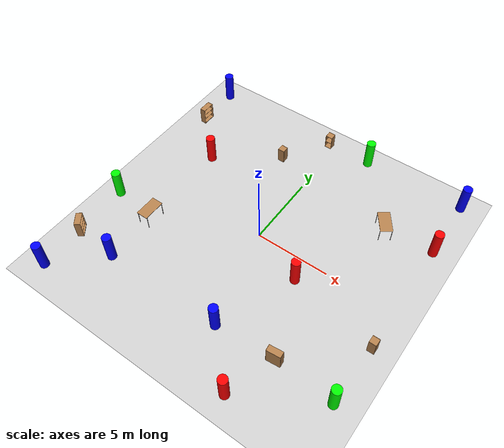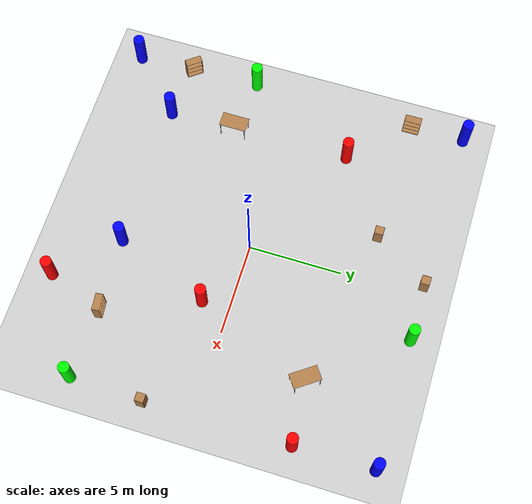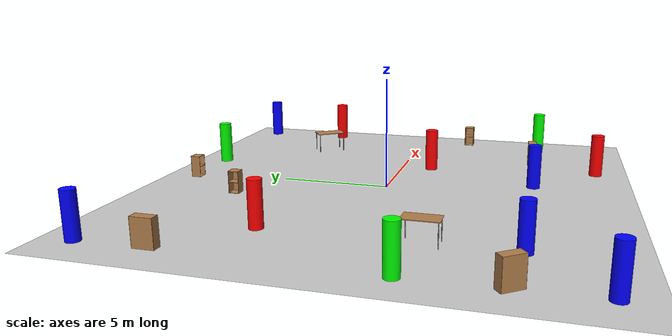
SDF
<sdf version="1.6">
 <world name="default">
  <light name="sun" type="directional">
   <pose>0 0 10 0 -0 0</pose>
   <diffuse>0.8 0.8 0.8 1</diffuse>
   <specular>0.2 0.2 0.2 1</specular>
   <attenuation>
    <range>1000</range>
    <constant>0.9</constant>
    <linear>0.01</linear>
    <quadratic>0.001</quadratic>
   </attenuation>
   <direction>-0.5 0.1 -0.9</direction>
  </light>
  <model name="ground_plane">
   <static>1</static>
   <link name="link">
    <collision name="collision">
     <geometry><plane><normal>0 0 1</normal><size>100 100</size></plane></geometry>
     <surface>
      <contact><collide_bitmask>65535</collide_bitmask></contact>
      <friction><ode><mu>100</mu><mu2>50</mu2></ode></friction>
     </surface>
    </collision>
    <visual name="visual">
     <cast_shadows>0</cast_shadows>
     <geometry><plane><normal>0 0 1</normal><size>100 100</size></plane></geometry>
     <material>
      <script><uri>file://media/materials/scripts/gazebo.material</uri><name>Gazebo/Grey</name></script>
     </material>
    </visual>
   </link>
  </model>
  <gravity>0 0 -9.8</gravity>
  <magnetic_field>6e-06 2.3e-05 -4.2e-05</magnetic_field>
  <atmosphere type="adiabatic"/>
  <physics name="default_physics" default="0" type="ode">
   <max_step_size>0.001</max_step_size>
   <real_time_factor>1</real_time_factor>
   <real_time_update_rate>1000</real_time_update_rate>
  </physics>
  <scene><ambient>0.4 0.4 0.4 1</ambient><background>0.7 0.7 0.7 1</background><shadows>0</shadows></scene>
  <audio><device>default</device></audio>
  <spherical_coordinates>
   <surface_model>EARTH_WGS84</surface_model>
   <latitude_deg>0</latitude_deg>
   <longitude_deg>0</longitude_deg>
   <elevation>0</elevation>
   <heading_deg>0</heading_deg>
  </spherical_coordinates>
  <model name="bookshelf0">
   <static>1</static>
   <link name="link">
    <inertial><mass>1</mass></inertial>
    <collision name="back">
     <pose>0 0.005 0.6 0 -0 0</pose>
     <geometry><box><size>0.9 0.01 1.2</size></box></geometry>
    </collision>
    <visual name="visual1">
     <pose>0 0.005 0.6 0 -0 0</pose>
     <geometry><box><size>0.9 0.01 1.2</size></box></geometry>
     <material>
      <script><uri>file://media/materials/scripts/gazebo.material</uri><name>Gazebo/Wood</name></script>
     </material>
    </visual>
    <collision name="left_side">
     <pose>0.45 -0.195 0.6 0 -0 0</pose>
     <geometry><box><size>0.02 0.4 1.2</size></box></geometry>
    </collision>
    <visual name="visual2">
     <pose>0.45 -0.195 0.6 0 -0 0</pose>
     <geometry><box><size>0.02 0.4 1.2</size></box></geometry>
     <material>
      <script><uri>file://media/materials/scripts/gazebo.material</uri><name>Gazebo/Wood</name></script>
     </material>
    </visual>
    <collision name="right_side">
     <pose>-0.45 -0.195 0.6 0 -0 0</pose>
     <geometry><box><size>0.02 0.4 1.2</size></box></geometry>
    </collision>
    <visual name="visual3">
     <pose>-0.45 -0.195 0.6 0 -0 0</pose>
     <geometry><box><size>0.02 0.4 1.2</size></box></geometry>
     <material>
      <script><uri>file://media/materials/scripts/gazebo.material</uri><name>Gazebo/Wood</name></script>
     </material>
    </visual>
    <collision name="bottom">
     <pose>0 -0.195 0.03 0 -0 0</pose>
     <geometry><box><size>0.88 0.4 0.06</size></box></geometry>
    </collision>
    <visual name="visual4">
     <pose>0 -0.195 0.03 0 -0 0</pose>
     <geometry><box><size>0.88 0.4 0.06</size></box></geometry>
     <material>
      <script><uri>file://media/materials/scripts/gazebo.material</uri><name>Gazebo/Wood</name></script>
     </material>
    </visual>
    <collision name="top">
     <pose>0 -0.195 1.19 0 -0 0</pose>
     <geometry><box><size>0.88 0.4 0.02</size></box></geometry>
    </collision>
    <visual name="visual5">
     <pose>0 -0.195 1.19 0 -0 0</pose>
     <geometry><box><size>0.88 0.4 0.02</size></box></geometry>
     <material>
      <script><uri>file://media/materials/scripts/gazebo.material</uri><name>Gazebo/Wood</name></script>
     </material>
    </visual>
    <collision name="low_shelf">
     <pose>0 -0.195 0.43 0 -0 0</pose>
     <geometry><box><size>0.88 0.4 0.02</size></box></geometry>
    </collision>
    <visual name="visual6">
     <pose>0 -0.195 0.43 0 -0 0</pose>
     <geometry><box><size>0.88 0.4 0.02</size></box></geometry>
     <material>
      <script><uri>file://media/materials/scripts/gazebo.material</uri><name>Gazebo/Wood</name></script>
     </material>
    </visual>
    <collision name="high_shelf">
     <pose>0 -0.195 0.8 0 -0 0</pose>
     <geometry><box><size>0.88 0.4 0.02</size></box></geometry>
    </collision>
    <visual name="visual7">
     <pose>0 -0.195 0.8 0 -0 0</pose>
     <geometry><box><size>0.88 0.4 0.02</size></box></geometry>
     <material>
      <script><uri>file://media/materials/scripts/gazebo.material</uri><name>Gazebo/Wood</name></script>
     </material>
    </visual>
   </link>
   <pose>-9.56962 -6.36024 0 0 -0 2.221</pose>
  </model>
  <model name="bookshelf3">
   <static>1</static>
   <link name="link">
    <inertial><mass>1</mass></inertial>
    <collision name="back">
     <pose>0 0.005 0.6 0 -0 0</pose>
     <geometry><box><size>0.9 0.01 1.2</size></box></geometry>
    </collision>
    <visual name="visual1">
     <pose>0 0.005 0.6 0 -0 0</pose>
     <geometry><box><size>0.9 0.01 1.2</size></box></geometry>
     <material>
      <script><uri>file://media/materials/scripts/gazebo.material</uri><name>Gazebo/Wood</name></script>
     </material>
    </visual>
    <collision name="left_side">
     <pose>0.45 -0.195 0.6 0 -0 0</pose>
     <geometry><box><size>0.02 0.4 1.2</size></box></geometry>
    </collision>
    <visual name="visual2">
     <pose>0.45 -0.195 0.6 0 -0 0</pose>
     <geometry><box><size>0.02 0.4 1.2</size></box></geometry>
     <material>
      <script><uri>file://media/materials/scripts/gazebo.material</uri><name>Gazebo/Wood</name></script>
     </material>
    </visual>
    <collision name="right_side">
     <pose>-0.45 -0.195 0.6 0 -0 0</pose>
     <geometry><box><size>0.02 0.4 1.2</size></box></geometry>
    </collision>
    <visual name="visual3">
     <pose>-0.45 -0.195 0.6 0 -0 0</pose>
     <geometry><box><size>0.02 0.4 1.2</size></box></geometry>
     <material>
      <script><uri>file://media/materials/scripts/gazebo.material</uri><name>Gazebo/Wood</name></script>
     </material>
    </visual>
    <collision name="bottom">
     <pose>0 -0.195 0.03 0 -0 0</pose>
     <geometry><box><size>0.88 0.4 0.06</size></box></geometry>
    </collision>
    <visual name="visual4">
     <pose>0 -0.195 0.03 0 -0 0</pose>
     <geometry><box><size>0.88 0.4 0.06</size></box></geometry>
     <material>
      <script><uri>file://media/materials/scripts/gazebo.material</uri><name>Gazebo/Wood</name></script>
     </material>
    </visual>
    <collision name="top">
     <pose>0 -0.195 1.19 0 -0 0</pose>
     <geometry><box><size>0.88 0.4 0.02</size></box></geometry>
    </collision>
    <visual name="visual5">
     <pose>0 -0.195 1.19 0 -0 0</pose>
     <geometry><box><size>0.88 0.4 0.02</size></box></geometry>
     <material>
      <script><uri>file://media/materials/scripts/gazebo.material</uri><name>Gazebo/Wood</name></script>
     </material>
    </visual>
    <collision name="low_shelf">
     <pose>0 -0.195 0.43 0 -0 0</pose>
     <geometry><box><size>0.88 0.4 0.02</size></box></geometry>
    </collision>
    <visual name="visual6">
     <pose>0 -0.195 0.43 0 -0 0</pose>
     <geometry><box><size>0.88 0.4 0.02</size></box></geometry>
     <material>
      <script><uri>file://media/materials/scripts/gazebo.material</uri><name>Gazebo/Wood</name></script>
     </material>
    </visual>
    <collision name="high_shelf">
     <pose>0 -0.195 0.8 0 -0 0</pose>
     <geometry><box><size>0.88 0.4 0.02</size></box></geometry>
    </collision>
    <visual name="visual7">
     <pose>0 -0.195 0.8 0 -0 0</pose>
     <geometry><box><size>0.88 0.4 0.02</size></box></geometry>
     <material>
      <script><uri>file://media/materials/scripts/gazebo.material</uri><name>Gazebo/Wood</name></script>
     </material>
    </visual>
   </link>
   <pose>5.62712 -6.56114 0 0 0 -3.04017</pose>
  </model>
  <model name="bookshelf4">
   <static>1</static>
   <link name="link">
    <inertial><mass>1</mass></inertial>
    <collision name="back">
     <pose>0 0.005 0.6 0 -0 0</pose>
     <geometry><box><size>0.9 0.01 1.2</size></box></geometry>
    </collision>
    <visual name="visual1">
     <pose>0 0.005 0.6 0 -0 0</pose>
     <geometry><box><size>0.9 0.01 1.2</size></box></geometry>
     <material>
      <script><uri>file://media/materials/scripts/gazebo.material</uri><name>Gazebo/Wood</name></script>
     </material>
    </visual>
    <collision name="left_side">
     <pose>0.45 -0.195 0.6 0 -0 0</pose>
     <geometry><box><size>0.02 0.4 1.2</size></box></geometry>
    </collision>
    <visual name="visual2">
     <pose>0.45 -0.195 0.6 0 -0 0</pose>
     <geometry><box><size>0.02 0.4 1.2</size></box></geometry>
     <material>
      <script><uri>file://media/materials/scripts/gazebo.material</uri><name>Gazebo/Wood</name></script>
     </material>
    </visual>
    <collision name="right_side">
     <pose>-0.45 -0.195 0.6 0 -0 0</pose>
     <geometry><box><size>0.02 0.4 1.2</size></box></geometry>
    </collision>
    <visual name="visual3">
     <pose>-0.45 -0.195 0.6 0 -0 0</pose>
     <geometry><box><size>0.02 0.4 1.2</size></box></geometry>
     <material>
      <script><uri>file://media/materials/scripts/gazebo.material</uri><name>Gazebo/Wood</name></script>
     </material>
    </visual>
    <collision name="bottom">
     <pose>0 -0.195 0.03 0 -0 0</pose>
     <geometry><box><size>0.88 0.4 0.06</size></box></geometry>
    </collision>
    <visual name="visual4">
     <pose>0 -0.195 0.03 0 -0 0</pose>
     <geometry><box><size>0.88 0.4 0.06</size></box></geometry>
     <material>
      <script><uri>file://media/materials/scripts/gazebo.material</uri><name>Gazebo/Wood</name></script>
     </material>
    </visual>
    <collision name="top">
     <pose>0 -0.195 1.19 0 -0 0</pose>
     <geometry><box><size>0.88 0.4 0.02</size></box></geometry>
    </collision>
    <visual name="visual5">
     <pose>0 -0.195 1.19 0 -0 0</pose>
     <geometry><box><size>0.88 0.4 0.02</size></box></geometry>
     <material>
      <script><uri>file://media/materials/scripts/gazebo.material</uri><name>Gazebo/Wood</name></script>
     </material>
    </visual>
    <collision name="low_shelf">
     <pose>0 -0.195 0.43 0 -0 0</pose>
     <geometry><box><size>0.88 0.4 0.02</size></box></geometry>
    </collision>
    <visual name="visual6">
     <pose>0 -0.195 0.43 0 -0 0</pose>
     <geometry><box><size>0.88 0.4 0.02</size></box></geometry>
     <material>
      <script><uri>file://media/materials/scripts/gazebo.material</uri><name>Gazebo/Wood</name></script>
     </material>
    </visual>
    <collision name="high_shelf">
     <pose>0 -0.195 0.8 0 -0 0</pose>
     <geometry><box><size>0.88 0.4 0.02</size></box></geometry>
    </collision>
    <visual name="visual7">
     <pose>0 -0.195 0.8 0 -0 0</pose>
     <geometry><box><size>0.88 0.4 0.02</size></box></geometry>
     <material>
      <script><uri>file://media/materials/scripts/gazebo.material</uri><name>Gazebo/Wood</name></script>
     </material>
    </visual>
   </link>
   <pose>-9.58851 6.47829 0 0 -0 1.5708</pose>
  </model>
  <model name="cabinet0">
   <static>1</static>
   <link name="cabinet_bottom_plate">
    <inertial>
     <pose>0 0 -1 0 -0 0</pose>
     <inertia><ixx>2.05</ixx><ixy>0</ixy><ixz>0</ixz><iyy>2.05</iyy><iyz>0</iyz><izz>2.05</izz></inertia>
     <mass>25</mass>
    </inertial>
    <collision name="cabinet_bottom_plate_geom">
     <pose>0 0 0.01 0 -0 0</pose>
     <geometry><box><size>0.45 0.45 0.02</size></box></geometry>
    </collision>
    <visual name="cabinet_bottom_plate_geom_visual">
     <pose>0 0 0.01 0 -0 0</pose>
     <geometry><box><size>0.45 0.45 0.02</size></box></geometry>
     <material>
      <script><uri>file://media/materials/scripts/gazebo.material</uri><name>Gazebo/Wood</name></script>
     </material>
    </visual>
    <collision name="cabinet_bottom_plate_geom_cabinet_back_plate">
     <pose>0.235 0 0.51 0 -0 0</pose>
     <geometry><box><size>0.02 0.45 1.02</size></box></geometry>
    </collision>
    <visual name="cabinet_bottom_plate_geom_cabinet_back_plate_visual">
     <pose>0.235 0 0.51 0 -0 0</pose>
     <geometry><box><size>0.02 0.45 1.02</size></box></geometry>
     <material>
      <script><uri>file://media/materials/scripts/gazebo.material</uri><name>Gazebo/Wood</name></script>
     </material>
    </visual>
    <collision name="cabinet_bottom_plate_geom_cabinet_left_plate">
     <pose>0 0.235 0.51 0 -0 0</pose>
     <geometry><box><size>0.45 0.02 1.02</size></box></geometry>
    </collision>
    <visual name="cabinet_bottom_plate_geom_cabinet_left_plate_visual">
     <pose>0 0.235 0.51 0 -0 0</pose>
     <geometry><box><size>0.45 0.02 1.02</size></box></geometry>
     <material>
      <script><uri>file://media/materials/scripts/gazebo.material</uri><name>Gazebo/Wood</name></script>
     </material>
    </visual>
    <collision name="cabinet_bottom_plate_geom_cabinet_middle_plate">
     <pose>0 0 0.51 0 -0 0</pose>
     <geometry><box><size>0.45 0.45 0.02</size></box></geometry>
    </collision>
    <visual name="cabinet_bottom_plate_geom_cabinet_middle_plate_visual">
     <pose>0 0 0.51 0 -0 0</pose>
     <geometry><box><size>0.45 0.45 0.02</size></box></geometry>
     <material>
      <script><uri>file://media/materials/scripts/gazebo.material</uri><name>Gazebo/Wood</name></script>
     </material>
    </visual>
    <collision name="cabinet_bottom_plate_geom_cabinet_right_plate">
     <pose>0 -0.235 0.51 0 -0 0</pose>
     <geometry><box><size>0.45 0.02 1.02</size></box></geometry>
    </collision>
    <visual name="cabinet_bottom_plate_geom_cabinet_right_plate_visual">
     <pose>0 -0.235 0.51 0 -0 0</pose>
     <geometry><box><size>0.45 0.02 1.02</size></box></geometry>
     <material>
      <script><uri>file://media/materials/scripts/gazebo.material</uri><name>Gazebo/Wood</name></script>
     </material>
    </visual>
    <collision name="cabinet_bottom_plate_geom_cabinet_top_plate">
     <pose>0 0 1.01 0 -0 0</pose>
     <geometry><box><size>0.45 0.45 0.02</size></box></geometry>
    </collision>
    <visual name="cabinet_bottom_plate_geom_cabinet_top_plate_visual">
     <pose>0 0 1.01 0 -0 0</pose>
     <geometry><box><size>0.45 0.45 0.02</size></box></geometry>
     <material>
      <script><uri>file://media/materials/scripts/gazebo.material</uri><name>Gazebo/Wood</name></script>
     </material>
    </visual>
   </link>
   <pose>-2.55094 6.37517 0 0 -0 0</pose>
  </model>
  <model name="cabinet4">
   <static>1</static>
   <link name="cabinet_bottom_plate">
    <inertial>
     <pose>0 0 -1 0 -0 0</pose>
     <inertia><ixx>2.05</ixx><ixy>0</ixy><ixz>0</ixz><iyy>2.05</iyy><iyz>0</iyz><izz>2.05</izz></inertia>
     <mass>25</mass>
    </inertial>
    <collision name="cabinet_bottom_plate_geom">
     <pose>0 0 0.01 0 -0 0</pose>
     <geometry><box><size>0.45 0.45 0.02</size></box></geometry>
    </collision>
    <visual name="cabinet_bottom_plate_geom_visual">
     <pose>0 0 0.01 0 -0 0</pose>
     <geometry><box><size>0.45 0.45 0.02</size></box></geometry>
     <material>
      <script><uri>file://media/materials/scripts/gazebo.material</uri><name>Gazebo/Wood</name></script>
     </material>
    </visual>
    <collision name="cabinet_bottom_plate_geom_cabinet_back_plate">
     <pose>0.235 0 0.51 0 -0 0</pose>
     <geometry><box><size>0.02 0.45 1.02</size></box></geometry>
    </collision>
    <visual name="cabinet_bottom_plate_geom_cabinet_back_plate_visual">
     <pose>0.235 0 0.51 0 -0 0</pose>
     <geometry><box><size>0.02 0.45 1.02</size></box></geometry>
     <material>
      <script><uri>file://media/materials/scripts/gazebo.material</uri><name>Gazebo/Wood</name></script>
     </material>
    </visual>
    <collision name="cabinet_bottom_plate_geom_cabinet_left_plate">
     <pose>0 0.235 0.51 0 -0 0</pose>
     <geometry><box><size>0.45 0.02 1.02</size></box></geometry>
    </collision>
    <visual name="cabinet_bottom_plate_geom_cabinet_left_plate_visual">
     <pose>0 0.235 0.51 0 -0 0</pose>
     <geometry><box><size>0.45 0.02 1.02</size></box></geometry>
     <material>
      <script><uri>file://media/materials/scripts/gazebo.material</uri><name>Gazebo/Wood</name></script>
     </material>
    </visual>
    <collision name="cabinet_bottom_plate_geom_cabinet_middle_plate">
     <pose>0 0 0.51 0 -0 0</pose>
     <geometry><box><size>0.45 0.45 0.02</size></box></geometry>
    </collision>
    <visual name="cabinet_bottom_plate_geom_cabinet_middle_plate_visual">
     <pose>0 0 0.51 0 -0 0</pose>
     <geometry><box><size>0.45 0.45 0.02</size></box></geometry>
     <material>
      <script><uri>file://media/materials/scripts/gazebo.material</uri><name>Gazebo/Wood</name></script>
     </material>
    </visual>
    <collision name="cabinet_bottom_plate_geom_cabinet_right_plate">
     <pose>0 -0.235 0.51 0 -0 0</pose>
     <geometry><box><size>0.45 0.02 1.02</size></box></geometry>
    </collision>
    <visual name="cabinet_bottom_plate_geom_cabinet_right_plate_visual">
     <pose>0 -0.235 0.51 0 -0 0</pose>
     <geometry><box><size>0.45 0.02 1.02</size></box></geometry>
     <material>
      <script><uri>file://media/materials/scripts/gazebo.material</uri><name>Gazebo/Wood</name></script>
     </material>
    </visual>
    <collision name="cabinet_bottom_plate_geom_cabinet_top_plate">
     <pose>0 0 1.01 0 -0 0</pose>
     <geometry><box><size>0.45 0.45 0.02</size></box></geometry>
    </collision>
    <visual name="cabinet_bottom_plate_geom_cabinet_top_plate_visual">
     <pose>0 0 1.01 0 -0 0</pose>
     <geometry><box><size>0.45 0.45 0.02</size></box></geometry>
     <material>
      <script><uri>file://media/materials/scripts/gazebo.material</uri><name>Gazebo/Wood</name></script>
     </material>
    </visual>
   </link>
   <pose>-0.543801 9.37768 0 0 -0 1.5708</pose>
  </model>
  <model name="table1">
   <static>1</static>
   <link name="link">
    <collision name="surface">
     <pose>0 0 1 0 -0 0</pose>
     <geometry><box><size>1.5 0.8 0.03</size></box></geometry>
     <surface><friction><ode><mu>0.6</mu><mu2>0.6</mu2></ode></friction></surface>
    </collision>
    <visual name="visual1">
     <pose>0 0 1 0 -0 0</pose>
     <geometry><box><size>1.5 0.8 0.03</size></box></geometry>
     <material>
      <script><uri>file://media/materials/scripts/gazebo.material</uri><name>Gazebo/Wood</name></script>
     </material>
    </visual>
    <collision name="front_left_leg">
     <pose>0.68 0.38 0.5 0 -0 0</pose>
     <geometry><cylinder><radius>0.02</radius><length>1</length></cylinder></geometry>
    </collision>
    <visual name="front_left_leg">
     <pose>0.68 0.38 0.5 0 -0 0</pose>
     <geometry><cylinder><radius>0.02</radius><length>1</length></cylinder></geometry>
     <material>
      <script><uri>file://media/materials/scripts/gazebo.material</uri><name>Gazebo/Grey</name></script>
     </material>
    </visual>
    <collision name="front_right_leg">
     <pose>0.68 -0.38 0.5 0 -0 0</pose>
     <geometry><cylinder><radius>0.02</radius><length>1</length></cylinder></geometry>
    </collision>
    <visual name="front_right_leg">
     <pose>0.68 -0.38 0.5 0 -0 0</pose>
     <geometry><cylinder><radius>0.02</radius><length>1</length></cylinder></geometry>
     <material>
      <script><uri>file://media/materials/scripts/gazebo.material</uri><name>Gazebo/Grey</name></script>
     </material>
    </visual>
    <collision name="back_right_leg">
     <pose>-0.68 -0.38 0.5 0 -0 0</pose>
     <geometry><cylinder><radius>0.02</radius><length>1</length></cylinder></geometry>
    </collision>
    <visual name="back_right_leg">
     <pose>-0.68 -0.38 0.5 0 -0 0</pose>
     <geometry><cylinder><radius>0.02</radius><length>1</length></cylinder></geometry>
     <material>
      <script><uri>file://media/materials/scripts/gazebo.material</uri><name>Gazebo/Grey</name></script>
     </material>
    </visual>
    <collision name="back_left_leg">
     <pose>-0.68 0.38 0.5 0 -0 0</pose>
     <geometry><cylinder><radius>0.02</radius><length>1</length></cylinder></geometry>
    </collision>
    <visual name="back_left_leg">
     <pose>-0.68 0.38 0.5 0 -0 0</pose>
     <geometry><cylinder><radius>0.02</radius><length>1</length></cylinder></geometry>
     <material>
      <script><uri>file://media/materials/scripts/gazebo.material</uri><name>Gazebo/Grey</name></script>
     </material>
    </visual>
   </link>
   <pose>-6.48004 -2.9038 0 0 0 -1.5708</pose>
  </model>
  <model name="table2">
   <static>1</static>
   <link name="link">
    <collision name="surface">
     <pose>0 0 1 0 -0 0</pose>
     <geometry><box><size>1.5 0.8 0.03</size></box></geometry>
     <surface><friction><ode><mu>0.6</mu><mu2>0.6</mu2></ode></friction></surface>
    </collision>
    <visual name="visual1">
     <pose>0 0 1 0 -0 0</pose>
     <geometry><box><size>1.5 0.8 0.03</size></box></geometry>
     <material>
      <script><uri>file://media/materials/scripts/gazebo.material</uri><name>Gazebo/Wood</name></script>
     </material>
    </visual>
    <collision name="front_left_leg">
     <pose>0.68 0.38 0.5 0 -0 0</pose>
     <geometry><cylinder><radius>0.02</radius><length>1</length></cylinder></geometry>
    </collision>
    <visual name="front_left_leg">
     <pose>0.68 0.38 0.5 0 -0 0</pose>
     <geometry><cylinder><radius>0.02</radius><length>1</length></cylinder></geometry>
     <material>
      <script><uri>file://media/materials/scripts/gazebo.material</uri><name>Gazebo/Grey</name></script>
     </material>
    </visual>
    <collision name="front_right_leg">
     <pose>0.68 -0.38 0.5 0 -0 0</pose>
     <geometry><cylinder><radius>0.02</radius><length>1</length></cylinder></geometry>
    </collision>
    <visual name="front_right_leg">
     <pose>0.68 -0.38 0.5 0 -0 0</pose>
     <geometry><cylinder><radius>0.02</radius><length>1</length></cylinder></geometry>
     <material>
      <script><uri>file://media/materials/scripts/gazebo.material</uri><name>Gazebo/Grey</name></script>
     </material>
    </visual>
    <collision name="back_right_leg">
     <pose>-0.68 -0.38 0.5 0 -0 0</pose>
     <geometry><cylinder><radius>0.02</radius><length>1</length></cylinder></geometry>
    </collision>
    <visual name="back_right_leg">
     <pose>-0.68 -0.38 0.5 0 -0 0</pose>
     <geometry><cylinder><radius>0.02</radius><length>1</length></cylinder></geometry>
     <material>
      <script><uri>file://media/materials/scripts/gazebo.material</uri><name>Gazebo/Grey</name></script>
     </material>
    </visual>
    <collision name="back_left_leg">
     <pose>-0.68 0.38 0.5 0 -0 0</pose>
     <geometry><cylinder><radius>0.02</radius><length>1</length></cylinder></geometry>
    </collision>
    <visual name="back_left_leg">
     <pose>-0.68 0.38 0.5 0 -0 0</pose>
     <geometry><cylinder><radius>0.02</radius><length>1</length></cylinder></geometry>
     <material>
      <script><uri>file://media/materials/scripts/gazebo.material</uri><name>Gazebo/Grey</name></script>
     </material>
    </visual>
   </link>
   <pose>6.20609 4.85184 0 0 -0 2.19088</pose>
  </model>
  <model name="red0">
   <link name="link">
    <pose>-0.202221 0.506091 0 0 -0 0</pose>
    <inertial>
     <mass>1</mass>
     <inertia><ixx>0.145833</ixx><ixy>0</ixy><ixz>0</ixz><iyy>0.145833</iyy><iyz>0</iyz><izz>0.125</izz></inertia>
    </inertial>
    <visual name="visual">
     <geometry><cylinder><radius>0.3</radius><length>2</length></cylinder></geometry>
     <material>
      <script><name>Gazebo/Grey</name><uri>file://media/materials/scripts/gazebo.material</uri></script>
      <ambient>1 0 0 1</ambient>
      <diffuse>0.7 0.7 0.7 1</diffuse>
      <specular>0.01 0.01 0.01 1</specular>
      <emissive>0 0 0 1</emissive>
      <shader type="vertex"><normal_map>__default__</normal_map></shader>
     </material>
    </visual>
    <collision name="collision">
     <geometry><cylinder><radius>0.3</radius><length>2</length></cylinder></geometry>
     <surface>
      <friction>
       <ode><mu>1</mu><mu2>1</mu2><fdir1>0 0 0</fdir1><slip1>0</slip1><slip2>0</slip2></ode>
       <torsional>
        <coefficient>1</coefficient>
        <patch_radius>0</patch_radius>
        <surface_radius>0</surface_radius>
        <use_patch_radius>1</use_patch_radius>
        <ode><slip>0</slip></ode>
       </torsional>
      </friction>
      <bounce><restitution_coefficient>0</restitution_coefficient><threshold>1e+06</threshold></bounce>
      <contact>
       <collide_without_contact>0</collide_without_contact>
       <collide_without_contact_bitmask>1</collide_without_contact_bitmask>
       <collide_bitmask>1</collide_bitmask>
       <ode>
        <soft_cfm>0</soft_cfm>
        <soft_erp>0.2</soft_erp>
        <kp>1e+13</kp>
        <kd>1</kd>
        <max_vel>0.01</max_vel>
        <min_depth>0</min_depth>
       </ode>
       <bullet>
        <split_impulse>1</split_impulse>
        <split_impulse_penetration_threshold>-0.01</split_impulse_penetration_threshold>
        <soft_cfm>0</soft_cfm>
        <soft_erp>0.2</soft_erp>
        <kp>1e+13</kp>
        <kd>1</kd>
       </bullet>
      </contact>
     </surface>
    </collision>
   </link>
   <static>0</static>
   <pose>-6.38999 3.00546 0.999998 0 -0 6.7e-05</pose>
  </model>
  <model name="red3">
   <link name="link">
    <pose>-0.202221 0.506091 0 0 -0 0</pose>
    <inertial>
     <mass>1</mass>
     <inertia><ixx>0.145833</ixx><ixy>0</ixy><ixz>0</ixz><iyy>0.145833</iyy><iyz>0</iyz><izz>0.125</izz></inertia>
    </inertial>
    <visual name="visual">
     <geometry><cylinder><radius>0.3</radius><length>2</length></cylinder></geometry>
     <material>
      <script><name>Gazebo/Grey</name><uri>file://media/materials/scripts/gazebo.material</uri></script>
      <ambient>1 0 0 1</ambient>
      <diffuse>0.7 0.7 0.7 1</diffuse>
      <specular>0.01 0.01 0.01 1</specular>
      <emissive>0 0 0 1</emissive>
      <shader type="vertex"><normal_map>__default__</normal_map></shader>
     </material>
    </visual>
    <collision name="collision">
     <geometry><cylinder><radius>0.3</radius><length>2</length></cylinder></geometry>
     <surface>
      <friction>
       <ode><mu>1</mu><mu2>1</mu2><fdir1>0 0 0</fdir1><slip1>0</slip1><slip2>0</slip2></ode>
       <torsional>
        <coefficient>1</coefficient>
        <patch_radius>0</patch_radius>
        <surface_radius>0</surface_radius>
        <use_patch_radius>1</use_patch_radius>
        <ode><slip>0</slip></ode>
       </torsional>
      </friction>
      <bounce><restitution_coefficient>0</restitution_coefficient><threshold>1e+06</threshold></bounce>
      <contact>
       <collide_without_contact>0</collide_without_contact>
       <collide_without_contact_bitmask>1</collide_without_contact_bitmask>
       <collide_bitmask>1</collide_bitmask>
       <ode>
        <soft_cfm>0</soft_cfm>
        <soft_erp>0.2</soft_erp>
        <kp>1e+13</kp>
        <kd>1</kd>
        <max_vel>0.01</max_vel>
        <min_depth>0</min_depth>
       </ode>
       <bullet>
        <split_impulse>1</split_impulse>
        <split_impulse_penetration_threshold>-0.01</split_impulse_penetration_threshold>
        <soft_cfm>0</soft_cfm>
        <soft_erp>0.2</soft_erp>
        <kp>1e+13</kp>
        <kd>1</kd>
       </bullet>
      </contact>
     </surface>
    </collision>
   </link>
   <static>0</static>
   <pose>4.75127 -9.96152 0.999991 0 -0 2.3e-05</pose>
  </model>
  <model name="red5">
   <link name="link">
    <pose>-0.202221 0.506091 0 0 -0 0</pose>
    <inertial>
     <mass>1</mass>
     <inertia><ixx>0.145833</ixx><ixy>0</ixy><ixz>0</ixz><iyy>0.145833</iyy><iyz>0</iyz><izz>0.125</izz></inertia>
    </inertial>
    <visual name="visual">
     <geometry><cylinder><radius>0.3</radius><length>2</length></cylinder></geometry>
     <material>
      <script><name>Gazebo/Grey</name><uri>file://media/materials/scripts/gazebo.material</uri></script>
      <ambient>1 0 0 1</ambient>
      <diffuse>0.7 0.7 0.7 1</diffuse>
      <specular>0.01 0.01 0.01 1</specular>
      <emissive>0 0 0 1</emissive>
      <shader type="vertex"><normal_map>__default__</normal_map></shader>
     </material>
    </visual>
    <collision name="collision">
     <geometry><cylinder><radius>0.3</radius><length>2</length></cylinder></geometry>
     <surface>
      <friction>
       <ode><mu>1</mu><mu2>1</mu2><fdir1>0 0 0</fdir1><slip1>0</slip1><slip2>0</slip2></ode>
       <torsional>
        <coefficient>1</coefficient>
        <patch_radius>0</patch_radius>
        <surface_radius>0</surface_radius>
        <use_patch_radius>1</use_patch_radius>
        <ode><slip>0</slip></ode>
       </torsional>
      </friction>
      <bounce><restitution_coefficient>0</restitution_coefficient><threshold>1e+06</threshold></bounce>
      <contact>
       <collide_without_contact>0</collide_without_contact>
       <collide_without_contact_bitmask>1</collide_without_contact_bitmask>
       <collide_bitmask>1</collide_bitmask>
       <ode>
        <soft_cfm>0</soft_cfm>
        <soft_erp>0.2</soft_erp>
        <kp>1e+13</kp>
        <kd>1</kd>
        <max_vel>0.01</max_vel>
        <min_depth>0</min_depth>
       </ode>
       <bullet>
        <split_impulse>1</split_impulse>
        <split_impulse_penetration_threshold>-0.01</split_impulse_penetration_threshold>
        <soft_cfm>0</soft_cfm>
        <soft_erp>0.2</soft_erp>
        <kp>1e+13</kp>
        <kd>1</kd>
       </bullet>
      </contact>
     </surface>
    </collision>
   </link>
   <static>0</static>
   <pose>9.73011 4.64891 0.999999 0 -0 3e-05</pose>
  </model>
  <model name="green4">
   <link name="link">
    <inertial>
     <mass>1</mass>
     <inertia><ixx>0.145833</ixx><ixy>0</ixy><ixz>0</ixz><iyy>0.145833</iyy><iyz>0</iyz><izz>0.125</izz></inertia>
    </inertial>
    <visual name="visual">
     <geometry><cylinder><radius>0.3</radius><length>2</length></cylinder></geometry>
     <material>
      <script><name>Gazebo/Grey</name><uri>file://media/materials/scripts/gazebo.material</uri></script>
      <ambient>0 1 0 1</ambient>
      <diffuse>0.7 0.7 0.7 1</diffuse>
      <specular>0.01 0.01 0.01 1</specular>
      <emissive>0 0 0 1</emissive>
      <shader type="vertex"><normal_map>__default__</normal_map></shader>
     </material>
    </visual>
    <collision name="collision">
     <geometry><cylinder><radius>0.3</radius><length>2</length></cylinder></geometry>
     <surface>
      <friction>
       <ode><mu>1</mu><mu2>1</mu2><fdir1>0 0 0</fdir1><slip1>0</slip1><slip2>0</slip2></ode>
       <torsional>
        <coefficient>1</coefficient>
        <patch_radius>0</patch_radius>
        <surface_radius>0</surface_radius>
        <use_patch_radius>1</use_patch_radius>
        <ode><slip>0</slip></ode>
       </torsional>
      </friction>
      <bounce><restitution_coefficient>0</restitution_coefficient><threshold>1e+06</threshold></bounce>
      <contact>
       <collide_without_contact>0</collide_without_contact>
       <collide_without_contact_bitmask>1</collide_without_contact_bitmask>
       <collide_bitmask>1</collide_bitmask>
       <ode>
        <soft_cfm>0</soft_cfm>
        <soft_erp>0.2</soft_erp>
        <kp>1e+13</kp>
        <kd>1</kd>
        <max_vel>0.01</max_vel>
        <min_depth>0</min_depth>
       </ode>
       <bullet>
        <split_impulse>1</split_impulse>
        <split_impulse_penetration_threshold>-0.01</split_impulse_penetration_threshold>
        <soft_cfm>0</soft_cfm>
        <soft_erp>0.2</soft_erp>
        <kp>1e+13</kp>
        <kd>1</kd>
       </bullet>
      </contact>
     </surface>
    </collision>
   </link>
   <static>0</static>
   <pose>-9.56899 -2.54475 0.999991 0 -0 7.2e-05</pose>
  </model>
  <model name="green6">
   <link name="link">
    <inertial>
     <mass>1</mass>
     <inertia><ixx>0.145833</ixx><ixy>0</ixy><ixz>0</ixz><iyy>0.145833</iyy><iyz>0</iyz><izz>0.125</izz></inertia>
    </inertial>
    <visual name="visual">
     <geometry><cylinder><radius>0.3</radius><length>2</length></cylinder></geometry>
     <material>
      <script><name>Gazebo/Grey</name><uri>file://media/materials/scripts/gazebo.material</uri></script>
      <ambient>0 1 0 1</ambient>
      <diffuse>0.7 0.7 0.7 1</diffuse>
      <specular>0.01 0.01 0.01 1</specular>
      <emissive>0 0 0 1</emissive>
      <shader type="vertex"><normal_map>__default__</normal_map></shader>
     </material>
    </visual>
    <collision name="collision">
     <geometry><cylinder><radius>0.3</radius><length>2</length></cylinder></geometry>
     <surface>
      <friction>
       <ode><mu>1</mu><mu2>1</mu2><fdir1>0 0 0</fdir1><slip1>0</slip1><slip2>0</slip2></ode>
       <torsional>
        <coefficient>1</coefficient>
        <patch_radius>0</patch_radius>
        <surface_radius>0</surface_radius>
        <use_patch_radius>1</use_patch_radius>
        <ode><slip>0</slip></ode>
       </torsional>
      </friction>
      <bounce><restitution_coefficient>0</restitution_coefficient><threshold>1e+06</threshold></bounce>
      <contact>
       <collide_without_contact>0</collide_without_contact>
       <collide_without_contact_bitmask>1</collide_without_contact_bitmask>
       <collide_bitmask>1</collide_bitmask>
       <ode>
        <soft_cfm>0</soft_cfm>
        <soft_erp>0.2</soft_erp>
        <kp>1e+13</kp>
        <kd>1</kd>
        <max_vel>0.01</max_vel>
        <min_depth>0</min_depth>
       </ode>
       <bullet>
        <split_impulse>1</split_impulse>
        <split_impulse_penetration_threshold>-0.01</split_impulse_penetration_threshold>
        <soft_cfm>0</soft_cfm>
        <soft_erp>0.2</soft_erp>
        <kp>1e+13</kp>
        <kd>1</kd>
       </bullet>
      </contact>
     </surface>
    </collision>
   </link>
   <static>0</static>
   <pose>2.53968 9.4254 0.999993 0 -0 1.57248</pose>
  </model>
  <model name="blue0">
   <link name="link">
    <inertial>
     <mass>1</mass>
     <inertia><ixx>0.145833</ixx><ixy>0</ixy><ixz>0</ixz><iyy>0.145833</iyy><iyz>0</iyz><izz>0.125</izz></inertia>
    </inertial>
    <visual name="visual">
     <geometry><cylinder><radius>0.3</radius><length>2</length></cylinder></geometry>
     <material>
      <script><name>Gazebo/Grey</name><uri>file://media/materials/scripts/gazebo.material</uri></script>
      <ambient>0 0 1 1</ambient>
      <diffuse>0.7 0.7 0.7 1</diffuse>
      <specular>0.01 0.01 0.01 1</specular>
      <emissive>0 0 0 1</emissive>
      <shader type="vertex"><normal_map>__default__</normal_map></shader>
     </material>
    </visual>
    <collision name="collision">
     <geometry><cylinder><radius>0.2</radius><length>2</length></cylinder></geometry>
     <surface>
      <friction>
       <ode><mu>1</mu><mu2>1</mu2><fdir1>0 0 0</fdir1><slip1>0</slip1><slip2>0</slip2></ode>
       <torsional>
        <coefficient>1</coefficient>
        <patch_radius>0</patch_radius>
        <surface_radius>0</surface_radius>
        <use_patch_radius>1</use_patch_radius>
        <ode><slip>0</slip></ode>
       </torsional>
      </friction>
      <bounce><restitution_coefficient>0</restitution_coefficient><threshold>1e+06</threshold></bounce>
      <contact>
       <collide_without_contact>0</collide_without_contact>
       <collide_without_contact_bitmask>1</collide_without_contact_bitmask>
       <collide_bitmask>1</collide_bitmask>
       <ode>
        <soft_cfm>0</soft_cfm>
        <soft_erp>0.2</soft_erp>
        <kp>1e+13</kp>
        <kd>1</kd>
        <max_vel>0.01</max_vel>
        <min_depth>0</min_depth>
       </ode>
       <bullet>
        <split_impulse>1</split_impulse>
        <split_impulse_penetration_threshold>-0.01</split_impulse_penetration_threshold>
        <soft_cfm>0</soft_cfm>
        <soft_erp>0.2</soft_erp>
        <kp>1e+13</kp>
        <kd>1</kd>
       </bullet>
      </contact>
     </surface>
    </collision>
   </link>
   <static>0</static>
   <pose>1.6568 -6.57214 1 0 0 -0.008091</pose>
  </model>
  <model name="blue1">
   <link name="link">
    <inertial>
     <mass>1</mass>
     <inertia><ixx>0.145833</ixx><ixy>0</ixy><ixz>0</ixz><iyy>0.145833</iyy><iyz>0</iyz><izz>0.125</izz></inertia>
    </inertial>
    <visual name="visual">
     <geometry><cylinder><radius>0.3</radius><length>2</length></cylinder></geometry>
     <material>
      <script><name>Gazebo/Grey</name><uri>file://media/materials/scripts/gazebo.material</uri></script>
      <ambient>0 0 1 1</ambient>
      <diffuse>0.7 0.7 0.7 1</diffuse>
      <specular>0.01 0.01 0.01 1</specular>
      <emissive>0 0 0 1</emissive>
      <shader type="vertex"><normal_map>__default__</normal_map></shader>
     </material>
    </visual>
    <collision name="collision">
     <geometry><cylinder><radius>0.2</radius><length>2</length></cylinder></geometry>
     <surface>
      <friction>
       <ode><mu>1</mu><mu2>1</mu2><fdir1>0 0 0</fdir1><slip1>0</slip1><slip2>0</slip2></ode>
       <torsional>
        <coefficient>1</coefficient>
        <patch_radius>0</patch_radius>
        <surface_radius>0</surface_radius>
        <use_patch_radius>1</use_patch_radius>
        <ode><slip>0</slip></ode>
       </torsional>
      </friction>
      <bounce><restitution_coefficient>0</restitution_coefficient><threshold>1e+06</threshold></bounce>
      <contact>
       <collide_without_contact>0</collide_without_contact>
       <collide_without_contact_bitmask>1</collide_without_contact_bitmask>
       <collide_bitmask>1</collide_bitmask>
       <ode>
        <soft_cfm>0</soft_cfm>
        <soft_erp>0.2</soft_erp>
        <kp>1e+13</kp>
        <kd>1</kd>
        <max_vel>0.01</max_vel>
        <min_depth>0</min_depth>
       </ode>
       <bullet>
        <split_impulse>1</split_impulse>
        <split_impulse_penetration_threshold>-0.01</split_impulse_penetration_threshold>
        <soft_cfm>0</soft_cfm>
        <soft_erp>0.2</soft_erp>
        <kp>1e+13</kp>
        <kd>1</kd>
       </bullet>
      </contact>
     </surface>
    </collision>
   </link>
   <static>0</static>
   <pose>9.46064 9.42756 0.99999 -0 -0 -0.00684</pose>
  </model>
  <model name="blue3">
   <link name="link">
    <inertial>
     <mass>1</mass>
     <inertia><ixx>0.145833</ixx><ixy>0</ixy><ixz>0</ixz><iyy>0.145833</iyy><iyz>0</iyz><izz>0.125</izz></inertia>
    </inertial>
    <visual name="visual">
     <geometry><cylinder><radius>0.3</radius><length>2</length></cylinder></geometry>
     <material>
      <script><name>Gazebo/Grey</name><uri>file://media/materials/scripts/gazebo.material</uri></script>
      <ambient>0 0 1 1</ambient>
      <diffuse>0.7 0.7 0.7 1</diffuse>
      <specular>0.01 0.01 0.01 1</specular>
      <emissive>0 0 0 1</emissive>
      <shader type="vertex"><normal_map>__default__</normal_map></shader>
     </material>
    </visual>
    <collision name="collision">
     <geometry><cylinder><radius>0.2</radius><length>2</length></cylinder></geometry>
     <surface>
      <friction>
       <ode><mu>1</mu><mu2>1</mu2><fdir1>0 0 0</fdir1><slip1>0</slip1><slip2>0</slip2></ode>
       <torsional>
        <coefficient>1</coefficient>
        <patch_radius>0</patch_radius>
        <surface_radius>0</surface_radius>
        <use_patch_radius>1</use_patch_radius>
        <ode><slip>0</slip></ode>
       </torsional>
      </friction>
      <bounce><restitution_coefficient>0</restitution_coefficient><threshold>1e+06</threshold></bounce>
      <contact>
       <collide_without_contact>0</collide_without_contact>
       <collide_without_contact_bitmask>1</collide_without_contact_bitmask>
       <collide_bitmask>1</collide_bitmask>
       <ode>
        <soft_cfm>0</soft_cfm>
        <soft_erp>0.2</soft_erp>
        <kp>1e+13</kp>
        <kd>1</kd>
        <max_vel>0.01</max_vel>
        <min_depth>0</min_depth>
       </ode>
       <bullet>
        <split_impulse>1</split_impulse>
        <split_impulse_penetration_threshold>-0.01</split_impulse_penetration_threshold>
        <soft_cfm>0</soft_cfm>
        <soft_erp>0.2</soft_erp>
        <kp>1e+13</kp>
        <kd>1</kd>
       </bullet>
      </contact>
     </surface>
    </collision>
   </link>
   <static>0</static>
   <pose>-9.36172 -9.40328 0.99999 0 -0 -0.006094</pose>
  </model>
  <model name="blue4">
   <link name="link">
    <inertial>
     <mass>1</mass>
     <inertia><ixx>0.145833</ixx><ixy>0</ixy><ixz>0</ixz><iyy>0.145833</iyy><iyz>0</iyz><izz>0.125</izz></inertia>
    </inertial>
    <visual name="visual">
     <geometry><cylinder><radius>0.3</radius><length>2</length></cylinder></geometry>
     <material>
      <script><name>Gazebo/Grey</name><uri>file://media/materials/scripts/gazebo.material</uri></script>
      <ambient>0 0 1 1</ambient>
      <diffuse>0.7 0.7 0.7 1</diffuse>
      <specular>0.01 0.01 0.01 1</specular>
      <emissive>0 0 0 1</emissive>
      <shader type="vertex"><normal_map>__default__</normal_map></shader>
     </material>
    </visual>
    <collision name="collision">
     <geometry><cylinder><radius>0.2</radius><length>2</length></cylinder></geometry>
     <surface>
      <friction>
       <ode><mu>1</mu><mu2>1</mu2><fdir1>0 0 0</fdir1><slip1>0</slip1><slip2>0</slip2></ode>
       <torsional>
        <coefficient>1</coefficient>
        <patch_radius>0</patch_radius>
        <surface_radius>0</surface_radius>
        <use_patch_radius>1</use_patch_radius>
        <ode><slip>0</slip></ode>
       </torsional>
      </friction>
      <bounce><restitution_coefficient>0</restitution_coefficient><threshold>1e+06</threshold></bounce>
      <contact>
       <collide_without_contact>0</collide_without_contact>
       <collide_without_contact_bitmask>1</collide_without_contact_bitmask>
       <collide_bitmask>1</collide_bitmask>
       <ode>
        <soft_cfm>0</soft_cfm>
        <soft_erp>0.2</soft_erp>
        <kp>1e+13</kp>
        <kd>1</kd>
        <max_vel>0.01</max_vel>
        <min_depth>0</min_depth>
       </ode>
       <bullet>
        <split_impulse>1</split_impulse>
        <split_impulse_penetration_threshold>-0.01</split_impulse_penetration_threshold>
        <soft_cfm>0</soft_cfm>
        <soft_erp>0.2</soft_erp>
        <kp>1e+13</kp>
        <kd>1</kd>
       </bullet>
      </contact>
     </surface>
    </collision>
   </link>
   <static>0</static>
   <pose>-6.4265 -6.57355 1 0 0 -0.007321</pose>
  </model>
  <model name="blue5">
   <link name="link">
    <inertial>
     <mass>1</mass>
     <inertia><ixx>0.145833</ixx><ixy>0</ixy><ixz>0</ixz><iyy>0.145833</iyy><iyz>0</iyz><izz>0.125</izz></inertia>
    </inertial>
    <visual name="visual">
     <geometry><cylinder><radius>0.3</radius><length>2</length></cylinder></geometry>
     <material>
      <script><name>Gazebo/Grey</name><uri>file://media/materials/scripts/gazebo.material</uri></script>
      <ambient>0 0 1 1</ambient>
      <diffuse>0.7 0.7 0.7 1</diffuse>
      <specular>0.01 0.01 0.01 1</specular>
      <emissive>0 0 0 1</emissive>
      <shader type="vertex"><normal_map>__default__</normal_map></shader>
     </material>
    </visual>
    <collision name="collision">
     <geometry><cylinder><radius>0.2</radius><length>2</length></cylinder></geometry>
     <surface>
      <friction>
       <ode><mu>1</mu><mu2>1</mu2><fdir1>0 0 0</fdir1><slip1>0</slip1><slip2>0</slip2></ode>
       <torsional>
        <coefficient>1</coefficient>
        <patch_radius>0</patch_radius>
        <surface_radius>0</surface_radius>
        <use_patch_radius>1</use_patch_radius>
        <ode><slip>0</slip></ode>
       </torsional>
      </friction>
      <bounce><restitution_coefficient>0</restitution_coefficient><threshold>1e+06</threshold></bounce>
      <contact>
       <collide_without_contact>0</collide_without_contact>
       <collide_without_contact_bitmask>1</collide_without_contact_bitmask>
       <collide_bitmask>1</collide_bitmask>
       <ode>
        <soft_cfm>0</soft_cfm>
        <soft_erp>0.2</soft_erp>
        <kp>1e+13</kp>
        <kd>1</kd>
        <max_vel>0.01</max_vel>
        <min_depth>0</min_depth>
       </ode>
       <bullet>
        <split_impulse>1</split_impulse>
        <split_impulse_penetration_threshold>-0.01</split_impulse_penetration_threshold>
        <soft_cfm>0</soft_cfm>
        <soft_erp>0.2</soft_erp>
        <kp>1e+13</kp>
        <kd>1</kd>
       </bullet>
      </contact>
     </surface>
    </collision>
   </link>
   <static>0</static>
   <pose>-9.51393 9.41406 0.999994 0 0 -0.003243</pose>
  </model>
  <model name="cabinet0_clone">
   <static>1</static>
   <link name="cabinet_bottom_plate">
    <inertial>
     <pose>0 0 -1 0 -0 0</pose>
     <inertia><ixx>2.05</ixx><ixy>0</ixy><ixz>0</ixz><iyy>2.05</iyy><iyz>0</iyz><izz>2.05</izz></inertia>
     <mass>25</mass>
    </inertial>
    <collision name="cabinet_bottom_plate_geom">
     <pose>0 0 0.01 0 -0 0</pose>
     <geometry><box><size>0.45 0.45 0.02</size></box></geometry>
    </collision>
    <visual name="cabinet_bottom_plate_geom_visual">
     <pose>0 0 0.01 0 -0 0</pose>
     <geometry><box><size>0.45 0.45 0.02</size></box></geometry>
     <material>
      <script><uri>file://media/materials/scripts/gazebo.material</uri><name>Gazebo/Wood</name></script>
     </material>
    </visual>
    <collision name="cabinet_bottom_plate_geom_cabinet_back_plate">
     <pose>0.235 0 0.51 0 -0 0</pose>
     <geometry><box><size>0.02 0.45 1.02</size></box></geometry>
    </collision>
    <visual name="cabinet_bottom_plate_geom_cabinet_back_plate_visual">
     <pose>0.235 0 0.51 0 -0 0</pose>
     <geometry><box><size>0.02 0.45 1.02</size></box></geometry>
     <material>
      <script><uri>file://media/materials/scripts/gazebo.material</uri><name>Gazebo/Wood</name></script>
     </material>
    </visual>
    <collision name="cabinet_bottom_plate_geom_cabinet_left_plate">
     <pose>0 0.235 0.51 0 -0 0</pose>
     <geometry><box><size>0.45 0.02 1.02</size></box></geometry>
    </collision>
    <visual name="cabinet_bottom_plate_geom_cabinet_left_plate_visual">
     <pose>0 0.235 0.51 0 -0 0</pose>
     <geometry><box><size>0.45 0.02 1.02</size></box></geometry>
     <material>
      <script><uri>file://media/materials/scripts/gazebo.material</uri><name>Gazebo/Wood</name></script>
     </material>
    </visual>
    <collision name="cabinet_bottom_plate_geom_cabinet_middle_plate">
     <pose>0 0 0.51 0 -0 0</pose>
     <geometry><box><size>0.45 0.45 0.02</size></box></geometry>
    </collision>
    <visual name="cabinet_bottom_plate_geom_cabinet_middle_plate_visual">
     <pose>0 0 0.51 0 -0 0</pose>
     <geometry><box><size>0.45 0.45 0.02</size></box></geometry>
     <material>
      <script><uri>file://media/materials/scripts/gazebo.material</uri><name>Gazebo/Wood</name></script>
     </material>
    </visual>
    <collision name="cabinet_bottom_plate_geom_cabinet_right_plate">
     <pose>0 -0.235 0.51 0 -0 0</pose>
     <geometry><box><size>0.45 0.02 1.02</size></box></geometry>
    </collision>
    <visual name="cabinet_bottom_plate_geom_cabinet_right_plate_visual">
     <pose>0 -0.235 0.51 0 -0 0</pose>
     <geometry><box><size>0.45 0.02 1.02</size></box></geometry>
     <material>
      <script><uri>file://media/materials/scripts/gazebo.material</uri><name>Gazebo/Wood</name></script>
     </material>
    </visual>
    <collision name="cabinet_bottom_plate_geom_cabinet_top_plate">
     <pose>0 0 1.01 0 -0 0</pose>
     <geometry><box><size>0.45 0.45 0.02</size></box></geometry>
    </collision>
    <visual name="cabinet_bottom_plate_geom_cabinet_top_plate_visual">
     <pose>0 0 1.01 0 -0 0</pose>
     <geometry><box><size>0.45 0.45 0.02</size></box></geometry>
     <material>
      <script><uri>file://media/materials/scripts/gazebo.material</uri><name>Gazebo/Wood</name></script>
     </material>
    </visual>
   </link>
   <pose>9.59264 -2.65491 0 0 -0 0</pose>
  </model>
  <model name="green4_clone">
   <link name="link">
    <inertial>
     <mass>1</mass>
     <inertia><ixx>0.145833</ixx><ixy>0</ixy><ixz>0</ixz><iyy>0.145833</iyy><iyz>0</iyz><izz>0.125</izz></inertia>
    </inertial>
    <visual name="visual">
     <geometry><cylinder><radius>0.3</radius><length>2</length></cylinder></geometry>
     <material>
      <script><name>Gazebo/Grey</name><uri>file://media/materials/scripts/gazebo.material</uri></script>
      <ambient>0 1 0 1</ambient>
      <diffuse>0.7 0.7 0.7 1</diffuse>
      <specular>0.01 0.01 0.01 1</specular>
      <emissive>0 0 0 1</emissive>
      <shader type="vertex"><normal_map>__default__</normal_map></shader>
     </material>
    </visual>
    <collision name="collision">
     <geometry><cylinder><radius>0.3</radius><length>2</length></cylinder></geometry>
     <surface>
      <friction>
       <ode><mu>1</mu><mu2>1</mu2><fdir1>0 0 0</fdir1><slip1>0</slip1><slip2>0</slip2></ode>
       <torsional>
        <coefficient>1</coefficient>
        <patch_radius>0</patch_radius>
        <surface_radius>0</surface_radius>
        <use_patch_radius>1</use_patch_radius>
        <ode><slip>0</slip></ode>
       </torsional>
      </friction>
      <bounce><restitution_coefficient>0</restitution_coefficient><threshold>1e+06</threshold></bounce>
      <contact>
       <collide_without_contact>0</collide_without_contact>
       <collide_without_contact_bitmask>1</collide_without_contact_bitmask>
       <collide_bitmask>1</collide_bitmask>
       <ode>
        <soft_cfm>0</soft_cfm>
        <soft_erp>0.2</soft_erp>
        <kp>1e+13</kp>
        <kd>1</kd>
        <max_vel>0.01</max_vel>
        <min_depth>0</min_depth>
       </ode>
       <bullet>
        <split_impulse>1</split_impulse>
        <split_impulse_penetration_threshold>-0.01</split_impulse_penetration_threshold>
        <soft_cfm>0</soft_cfm>
        <soft_erp>0.2</soft_erp>
        <kp>1e+13</kp>
        <kd>1</kd>
       </bullet>
      </contact>
     </surface>
    </collision>
   </link>
   <static>0</static>
   <pose>9.4712 -6.56553 0.999999 0 -0 7.2e-05</pose>
  </model>
  <model name="red0_clone">
   <link name="link">
    <pose>-0.202221 0.506091 0 0 -0 0</pose>
    <inertial>
     <mass>1</mass>
     <inertia><ixx>0.145833</ixx><ixy>0</ixy><ixz>0</ixz><iyy>0.145833</iyy><iyz>0</iyz><izz>0.125</izz></inertia>
    </inertial>
    <visual name="visual">
     <geometry><cylinder><radius>0.3</radius><length>2</length></cylinder></geometry>
     <material>
      <script><name>Gazebo/Grey</name><uri>file://media/materials/scripts/gazebo.material</uri></script>
      <ambient>1 0 0 1</ambient>
      <diffuse>0.7 0.7 0.7 1</diffuse>
      <specular>0.01 0.01 0.01 1</specular>
      <emissive>0 0 0 1</emissive>
      <shader type="vertex"><normal_map>__default__</normal_map></shader>
     </material>
    </visual>
    <collision name="collision">
     <geometry><cylinder><radius>0.3</radius><length>2</length></cylinder></geometry>
     <surface>
      <friction>
       <ode><mu>1</mu><mu2>1</mu2><fdir1>0 0 0</fdir1><slip1>0</slip1><slip2>0</slip2></ode>
       <torsional>
        <coefficient>1</coefficient>
        <patch_radius>0</patch_radius>
        <surface_radius>0</surface_radius>
        <use_patch_radius>1</use_patch_radius>
        <ode><slip>0</slip></ode>
       </torsional>
      </friction>
      <bounce><restitution_coefficient>0</restitution_coefficient><threshold>1e+06</threshold></bounce>
      <contact>
       <collide_without_contact>0</collide_without_contact>
       <collide_without_contact_bitmask>1</collide_without_contact_bitmask>
       <collide_bitmask>1</collide_bitmask>
       <ode>
        <soft_cfm>0</soft_cfm>
        <soft_erp>0.2</soft_erp>
        <kp>1e+13</kp>
        <kd>1</kd>
        <max_vel>0.01</max_vel>
        <min_depth>0</min_depth>
       </ode>
       <bullet>
        <split_impulse>1</split_impulse>
        <split_impulse_penetration_threshold>-0.01</split_impulse_penetration_threshold>
        <soft_cfm>0</soft_cfm>
        <soft_erp>0.2</soft_erp>
        <kp>1e+13</kp>
        <kd>1</kd>
       </bullet>
      </contact>
     </surface>
    </collision>
   </link>
   <static>0</static>
   <pose>3.8651 -1.95465 0.999997 0 -0 7.3e-05</pose>
  </model>
 </world>
</sdf>
